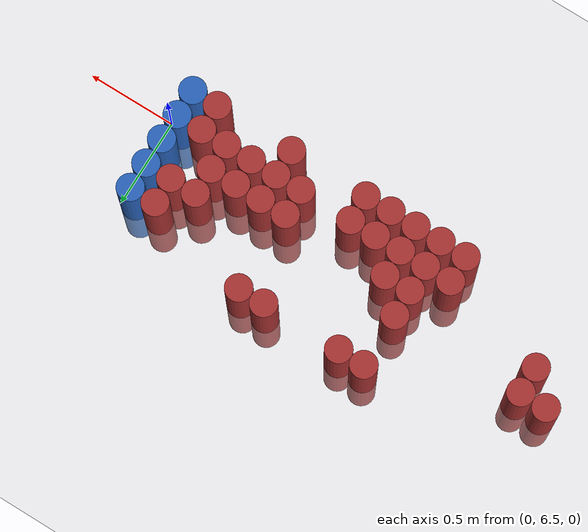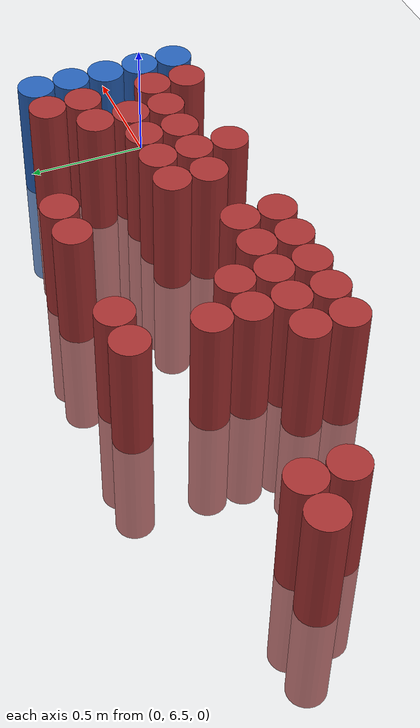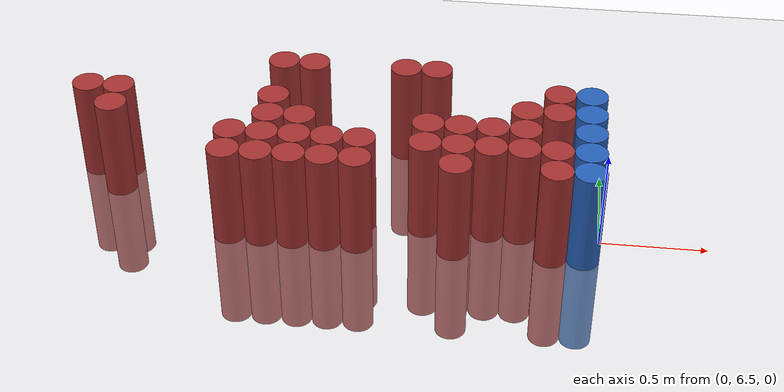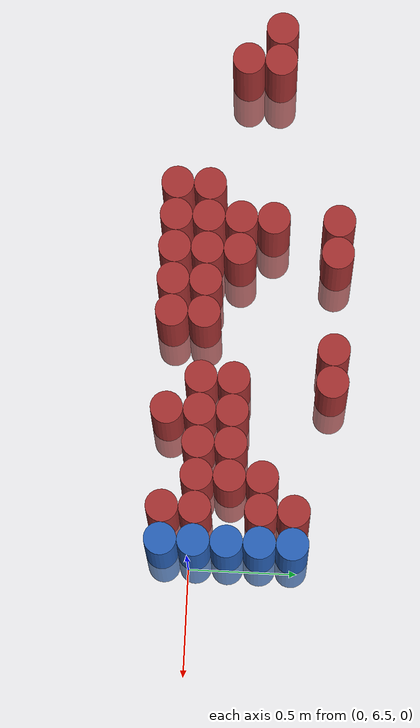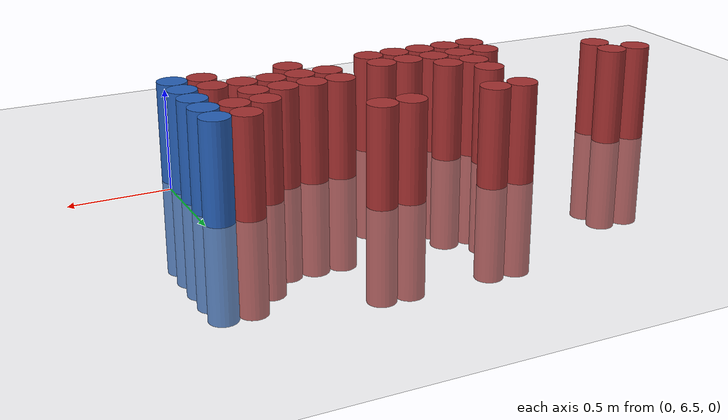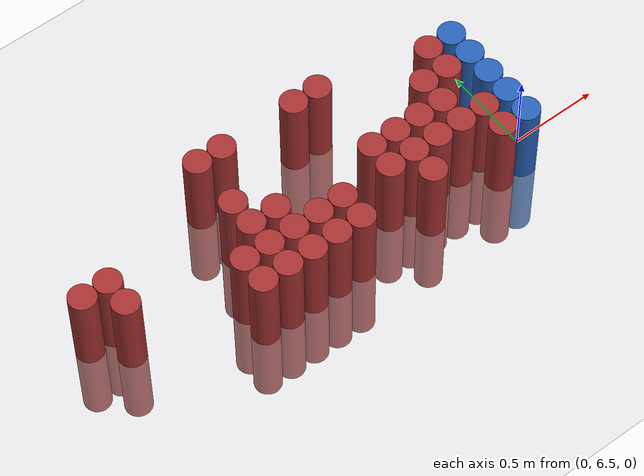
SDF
<sdf version="1.6">
 <world name="default">
  <model name="ground_plane">
   <static>1</static>
   <link name="link">
    <collision name="collision">
     <geometry><plane><normal>0 0 1</normal><size>100 100</size></plane></geometry>
     <surface><friction><ode><mu>100</mu><mu2>50</mu2></ode></friction></surface>
    </collision>
    <visual name="visual">
     <cast_shadows>0</cast_shadows>
     <geometry><plane><normal>0 0 1</normal><size>100 100</size></plane></geometry>
     <material>
      <script><uri>file://media/materials/scripts/gazebo.material</uri><name>Gazebo/Grey</name></script>
     </material>
    </visual>
   </link>
  </model>
  <model name="unit_cylinder_202">
   <static>1</static>
   <pose>-2.475000 6.825000 0.000000 0.000000 0.000000 0.000000</pose>
   <link name="link">
    <inertial>
     <mass>1</mass>
     <inertia><ixx>0.145833</ixx><ixy>0</ixy><ixz>0</ixz><iyy>0.145833</iyy><iyz>0</iyz><izz>0.125</izz></inertia>
    </inertial>
    <collision name="collision">
     <geometry><cylinder><radius>0.075000</radius><length>1</length></cylinder></geometry>
    </collision>
    <visual name="visual">
     <geometry><cylinder><radius>0.075000</radius><length>1</length></cylinder></geometry>
     <material>
      <ambient>0.648000 0.192000 0.192000 1</ambient>
      <diffuse>0.648000 0.192000 0.192000 1</diffuse>
     </material>
     <material>
      <script><name>Gazebo/Grey</name><uri>file://media/materials/scripts/gazebo.material</uri></script>
     </material>
    </visual>
    <sensor name="sensor_contact" type="contact"><contact><collision>collision</collision></contact></sensor>
   </link>
   <plugin filename="gz-sim-touchplugin-system" name="gz::sim::systems::TouchPlugin">
    <target>robot</target>
    <namespace>robot</namespace>
    <time>0.001</time>
    <enabled>true</enabled>
   </plugin>
  </model>
  <model name="unit_cylinder_210">
   <static>1</static>
   <pose>-2.325000 6.675000 0.000000 0.000000 0.000000 0.000000</pose>
   <link name="link">
    <inertial>
     <mass>1</mass>
     <inertia><ixx>0.145833</ixx><ixy>0</ixy><ixz>0</ixz><iyy>0.145833</iyy><iyz>0</iyz><izz>0.125</izz></inertia>
    </inertial>
    <collision name="collision">
     <geometry><cylinder><radius>0.075000</radius><length>1</length></cylinder></geometry>
    </collision>
    <visual name="visual">
     <geometry><cylinder><radius>0.075000</radius><length>1</length></cylinder></geometry>
     <material>
      <ambient>0.648000 0.192000 0.192000 1</ambient>
      <diffuse>0.648000 0.192000 0.192000 1</diffuse>
     </material>
     <material>
      <script><name>Gazebo/Grey</name><uri>file://media/materials/scripts/gazebo.material</uri></script>
     </material>
    </visual>
    <sensor name="sensor_contact" type="contact"><contact><collision>collision</collision></contact></sensor>
   </link>
   <plugin filename="gz-sim-touchplugin-system" name="gz::sim::systems::TouchPlugin">
    <target>robot</target>
    <namespace>robot</namespace>
    <time>0.001</time>
    <enabled>true</enabled>
   </plugin>
  </model>
  <model name="unit_cylinder_211">
   <static>1</static>
   <pose>-2.325000 6.825000 0.000000 0.000000 0.000000 0.000000</pose>
   <link name="link">
    <inertial>
     <mass>1</mass>
     <inertia><ixx>0.145833</ixx><ixy>0</ixy><ixz>0</ixz><iyy>0.145833</iyy><iyz>0</iyz><izz>0.125</izz></inertia>
    </inertial>
    <collision name="collision">
     <geometry><cylinder><radius>0.075000</radius><length>1</length></cylinder></geometry>
    </collision>
    <visual name="visual">
     <geometry><cylinder><radius>0.075000</radius><length>1</length></cylinder></geometry>
     <material>
      <ambient>0.648000 0.192000 0.192000 1</ambient>
      <diffuse>0.648000 0.192000 0.192000 1</diffuse>
     </material>
     <material>
      <script><name>Gazebo/Grey</name><uri>file://media/materials/scripts/gazebo.material</uri></script>
     </material>
    </visual>
    <sensor name="sensor_contact" type="contact"><contact><collision>collision</collision></contact></sensor>
   </link>
   <plugin filename="gz-sim-touchplugin-system" name="gz::sim::systems::TouchPlugin">
    <target>robot</target>
    <namespace>robot</namespace>
    <time>0.001</time>
    <enabled>true</enabled>
   </plugin>
  </model>
  <model name="unit_cylinder_238">
   <static>1</static>
   <pose>-1.725000 6.375000 0.000000 0.000000 0.000000 0.000000</pose>
   <link name="link">
    <inertial>
     <mass>1</mass>
     <inertia><ixx>0.145833</ixx><ixy>0</ixy><ixz>0</ixz><iyy>0.145833</iyy><iyz>0</iyz><izz>0.125</izz></inertia>
    </inertial>
    <collision name="collision">
     <geometry><cylinder><radius>0.075000</radius><length>1</length></cylinder></geometry>
    </collision>
    <visual name="visual">
     <geometry><cylinder><radius>0.075000</radius><length>1</length></cylinder></geometry>
     <material>
      <ambient>0.648000 0.192000 0.192000 1</ambient>
      <diffuse>0.648000 0.192000 0.192000 1</diffuse>
     </material>
     <material>
      <script><name>Gazebo/Grey</name><uri>file://media/materials/scripts/gazebo.material</uri></script>
     </material>
    </visual>
    <sensor name="sensor_contact" type="contact"><contact><collision>collision</collision></contact></sensor>
   </link>
   <plugin filename="gz-sim-touchplugin-system" name="gz::sim::systems::TouchPlugin">
    <target>robot</target>
    <namespace>robot</namespace>
    <time>0.001</time>
    <enabled>true</enabled>
   </plugin>
  </model>
  <model name="unit_cylinder_239">
   <static>1</static>
   <pose>-1.725000 6.525000 0.000000 0.000000 0.000000 0.000000</pose>
   <link name="link">
    <inertial>
     <mass>1</mass>
     <inertia><ixx>0.145833</ixx><ixy>0</ixy><ixz>0</ixz><iyy>0.145833</iyy><iyz>0</iyz><izz>0.125</izz></inertia>
    </inertial>
    <collision name="collision">
     <geometry><cylinder><radius>0.075000</radius><length>1</length></cylinder></geometry>
    </collision>
    <visual name="visual">
     <geometry><cylinder><radius>0.075000</radius><length>1</length></cylinder></geometry>
     <material>
      <ambient>0.648000 0.192000 0.192000 1</ambient>
      <diffuse>0.648000 0.192000 0.192000 1</diffuse>
     </material>
     <material>
      <script><name>Gazebo/Grey</name><uri>file://media/materials/scripts/gazebo.material</uri></script>
     </material>
    </visual>
    <sensor name="sensor_contact" type="contact"><contact><collision>collision</collision></contact></sensor>
   </link>
   <plugin filename="gz-sim-touchplugin-system" name="gz::sim::systems::TouchPlugin">
    <target>robot</target>
    <namespace>robot</namespace>
    <time>0.001</time>
    <enabled>true</enabled>
   </plugin>
  </model>
  <model name="unit_cylinder_247">
   <static>1</static>
   <pose>-1.575000 6.375000 0.000000 0.000000 0.000000 0.000000</pose>
   <link name="link">
    <inertial>
     <mass>1</mass>
     <inertia><ixx>0.145833</ixx><ixy>0</ixy><ixz>0</ixz><iyy>0.145833</iyy><iyz>0</iyz><izz>0.125</izz></inertia>
    </inertial>
    <collision name="collision">
     <geometry><cylinder><radius>0.075000</radius><length>1</length></cylinder></geometry>
    </collision>
    <visual name="visual">
     <geometry><cylinder><radius>0.075000</radius><length>1</length></cylinder></geometry>
     <material>
      <ambient>0.648000 0.192000 0.192000 1</ambient>
      <diffuse>0.648000 0.192000 0.192000 1</diffuse>
     </material>
     <material>
      <script><name>Gazebo/Grey</name><uri>file://media/materials/scripts/gazebo.material</uri></script>
     </material>
    </visual>
    <sensor name="sensor_contact" type="contact"><contact><collision>collision</collision></contact></sensor>
   </link>
   <plugin filename="gz-sim-touchplugin-system" name="gz::sim::systems::TouchPlugin">
    <target>robot</target>
    <namespace>robot</namespace>
    <time>0.001</time>
    <enabled>true</enabled>
   </plugin>
  </model>
  <model name="unit_cylinder_248">
   <static>1</static>
   <pose>-1.575000 6.525000 0.000000 0.000000 0.000000 0.000000</pose>
   <link name="link">
    <inertial>
     <mass>1</mass>
     <inertia><ixx>0.145833</ixx><ixy>0</ixy><ixz>0</ixz><iyy>0.145833</iyy><iyz>0</iyz><izz>0.125</izz></inertia>
    </inertial>
    <collision name="collision">
     <geometry><cylinder><radius>0.075000</radius><length>1</length></cylinder></geometry>
    </collision>
    <visual name="visual">
     <geometry><cylinder><radius>0.075000</radius><length>1</length></cylinder></geometry>
     <material>
      <ambient>0.648000 0.192000 0.192000 1</ambient>
      <diffuse>0.648000 0.192000 0.192000 1</diffuse>
     </material>
     <material>
      <script><name>Gazebo/Grey</name><uri>file://media/materials/scripts/gazebo.material</uri></script>
     </material>
    </visual>
    <sensor name="sensor_contact" type="contact"><contact><collision>collision</collision></contact></sensor>
   </link>
   <plugin filename="gz-sim-touchplugin-system" name="gz::sim::systems::TouchPlugin">
    <target>robot</target>
    <namespace>robot</namespace>
    <time>0.001</time>
    <enabled>true</enabled>
   </plugin>
  </model>
  <model name="unit_cylinder_249">
   <static>1</static>
   <pose>-1.575000 6.675000 0.000000 0.000000 0.000000 0.000000</pose>
   <link name="link">
    <inertial>
     <mass>1</mass>
     <inertia><ixx>0.145833</ixx><ixy>0</ixy><ixz>0</ixz><iyy>0.145833</iyy><iyz>0</iyz><izz>0.125</izz></inertia>
    </inertial>
    <collision name="collision">
     <geometry><cylinder><radius>0.075000</radius><length>1</length></cylinder></geometry>
    </collision>
    <visual name="visual">
     <geometry><cylinder><radius>0.075000</radius><length>1</length></cylinder></geometry>
     <material>
      <ambient>0.648000 0.192000 0.192000 1</ambient>
      <diffuse>0.648000 0.192000 0.192000 1</diffuse>
     </material>
     <material>
      <script><name>Gazebo/Grey</name><uri>file://media/materials/scripts/gazebo.material</uri></script>
     </material>
    </visual>
    <sensor name="sensor_contact" type="contact"><contact><collision>collision</collision></contact></sensor>
   </link>
   <plugin filename="gz-sim-touchplugin-system" name="gz::sim::systems::TouchPlugin">
    <target>robot</target>
    <namespace>robot</namespace>
    <time>0.001</time>
    <enabled>true</enabled>
   </plugin>
  </model>
  <model name="unit_cylinder_250">
   <static>1</static>
   <pose>-1.575000 6.825000 0.000000 0.000000 0.000000 0.000000</pose>
   <link name="link">
    <inertial>
     <mass>1</mass>
     <inertia><ixx>0.145833</ixx><ixy>0</ixy><ixz>0</ixz><iyy>0.145833</iyy><iyz>0</iyz><izz>0.125</izz></inertia>
    </inertial>
    <collision name="collision">
     <geometry><cylinder><radius>0.075000</radius><length>1</length></cylinder></geometry>
    </collision>
    <visual name="visual">
     <geometry><cylinder><radius>0.075000</radius><length>1</length></cylinder></geometry>
     <material>
      <ambient>0.648000 0.192000 0.192000 1</ambient>
      <diffuse>0.648000 0.192000 0.192000 1</diffuse>
     </material>
     <material>
      <script><name>Gazebo/Grey</name><uri>file://media/materials/scripts/gazebo.material</uri></script>
     </material>
    </visual>
    <sensor name="sensor_contact" type="contact"><contact><collision>collision</collision></contact></sensor>
   </link>
   <plugin filename="gz-sim-touchplugin-system" name="gz::sim::systems::TouchPlugin">
    <target>robot</target>
    <namespace>robot</namespace>
    <time>0.001</time>
    <enabled>true</enabled>
   </plugin>
  </model>
  <model name="unit_cylinder_251">
   <static>1</static>
   <pose>-1.575000 7.125000 0.000000 0.000000 0.000000 0.000000</pose>
   <link name="link">
    <inertial>
     <mass>1</mass>
     <inertia><ixx>0.145833</ixx><ixy>0</ixy><ixz>0</ixz><iyy>0.145833</iyy><iyz>0</iyz><izz>0.125</izz></inertia>
    </inertial>
    <collision name="collision">
     <geometry><cylinder><radius>0.075000</radius><length>1</length></cylinder></geometry>
    </collision>
    <visual name="visual">
     <geometry><cylinder><radius>0.075000</radius><length>1</length></cylinder></geometry>
     <material>
      <ambient>0.648000 0.192000 0.192000 1</ambient>
      <diffuse>0.648000 0.192000 0.192000 1</diffuse>
     </material>
     <material>
      <script><name>Gazebo/Grey</name><uri>file://media/materials/scripts/gazebo.material</uri></script>
     </material>
    </visual>
    <sensor name="sensor_contact" type="contact"><contact><collision>collision</collision></contact></sensor>
   </link>
   <plugin filename="gz-sim-touchplugin-system" name="gz::sim::systems::TouchPlugin">
    <target>robot</target>
    <namespace>robot</namespace>
    <time>0.001</time>
    <enabled>true</enabled>
   </plugin>
  </model>
  <model name="unit_cylinder_259">
   <static>1</static>
   <pose>-1.425000 6.375000 0.000000 0.000000 0.000000 0.000000</pose>
   <link name="link">
    <inertial>
     <mass>1</mass>
     <inertia><ixx>0.145833</ixx><ixy>0</ixy><ixz>0</ixz><iyy>0.145833</iyy><iyz>0</iyz><izz>0.125</izz></inertia>
    </inertial>
    <collision name="collision">
     <geometry><cylinder><radius>0.075000</radius><length>1</length></cylinder></geometry>
    </collision>
    <visual name="visual">
     <geometry><cylinder><radius>0.075000</radius><length>1</length></cylinder></geometry>
     <material>
      <ambient>0.648000 0.192000 0.192000 1</ambient>
      <diffuse>0.648000 0.192000 0.192000 1</diffuse>
     </material>
     <material>
      <script><name>Gazebo/Grey</name><uri>file://media/materials/scripts/gazebo.material</uri></script>
     </material>
    </visual>
    <sensor name="sensor_contact" type="contact"><contact><collision>collision</collision></contact></sensor>
   </link>
   <plugin filename="gz-sim-touchplugin-system" name="gz::sim::systems::TouchPlugin">
    <target>robot</target>
    <namespace>robot</namespace>
    <time>0.001</time>
    <enabled>true</enabled>
   </plugin>
  </model>
  <model name="unit_cylinder_260">
   <static>1</static>
   <pose>-1.425000 6.525000 0.000000 0.000000 0.000000 0.000000</pose>
   <link name="link">
    <inertial>
     <mass>1</mass>
     <inertia><ixx>0.145833</ixx><ixy>0</ixy><ixz>0</ixz><iyy>0.145833</iyy><iyz>0</iyz><izz>0.125</izz></inertia>
    </inertial>
    <collision name="collision">
     <geometry><cylinder><radius>0.075000</radius><length>1</length></cylinder></geometry>
    </collision>
    <visual name="visual">
     <geometry><cylinder><radius>0.075000</radius><length>1</length></cylinder></geometry>
     <material>
      <ambient>0.648000 0.192000 0.192000 1</ambient>
      <diffuse>0.648000 0.192000 0.192000 1</diffuse>
     </material>
     <material>
      <script><name>Gazebo/Grey</name><uri>file://media/materials/scripts/gazebo.material</uri></script>
     </material>
    </visual>
    <sensor name="sensor_contact" type="contact"><contact><collision>collision</collision></contact></sensor>
   </link>
   <plugin filename="gz-sim-touchplugin-system" name="gz::sim::systems::TouchPlugin">
    <target>robot</target>
    <namespace>robot</namespace>
    <time>0.001</time>
    <enabled>true</enabled>
   </plugin>
  </model>
  <model name="unit_cylinder_261">
   <static>1</static>
   <pose>-1.425000 6.675000 0.000000 0.000000 0.000000 0.000000</pose>
   <link name="link">
    <inertial>
     <mass>1</mass>
     <inertia><ixx>0.145833</ixx><ixy>0</ixy><ixz>0</ixz><iyy>0.145833</iyy><iyz>0</iyz><izz>0.125</izz></inertia>
    </inertial>
    <collision name="collision">
     <geometry><cylinder><radius>0.075000</radius><length>1</length></cylinder></geometry>
    </collision>
    <visual name="visual">
     <geometry><cylinder><radius>0.075000</radius><length>1</length></cylinder></geometry>
     <material>
      <ambient>0.648000 0.192000 0.192000 1</ambient>
      <diffuse>0.648000 0.192000 0.192000 1</diffuse>
     </material>
     <material>
      <script><name>Gazebo/Grey</name><uri>file://media/materials/scripts/gazebo.material</uri></script>
     </material>
    </visual>
    <sensor name="sensor_contact" type="contact"><contact><collision>collision</collision></contact></sensor>
   </link>
   <plugin filename="gz-sim-touchplugin-system" name="gz::sim::systems::TouchPlugin">
    <target>robot</target>
    <namespace>robot</namespace>
    <time>0.001</time>
    <enabled>true</enabled>
   </plugin>
  </model>
  <model name="unit_cylinder_262">
   <static>1</static>
   <pose>-1.425000 7.125000 0.000000 0.000000 0.000000 0.000000</pose>
   <link name="link">
    <inertial>
     <mass>1</mass>
     <inertia><ixx>0.145833</ixx><ixy>0</ixy><ixz>0</ixz><iyy>0.145833</iyy><iyz>0</iyz><izz>0.125</izz></inertia>
    </inertial>
    <collision name="collision">
     <geometry><cylinder><radius>0.075000</radius><length>1</length></cylinder></geometry>
    </collision>
    <visual name="visual">
     <geometry><cylinder><radius>0.075000</radius><length>1</length></cylinder></geometry>
     <material>
      <ambient>0.648000 0.192000 0.192000 1</ambient>
      <diffuse>0.648000 0.192000 0.192000 1</diffuse>
     </material>
     <material>
      <script><name>Gazebo/Grey</name><uri>file://media/materials/scripts/gazebo.material</uri></script>
     </material>
    </visual>
    <sensor name="sensor_contact" type="contact"><contact><collision>collision</collision></contact></sensor>
   </link>
   <plugin filename="gz-sim-touchplugin-system" name="gz::sim::systems::TouchPlugin">
    <target>robot</target>
    <namespace>robot</namespace>
    <time>0.001</time>
    <enabled>true</enabled>
   </plugin>
  </model>
  <model name="unit_cylinder_265">
   <static>1</static>
   <pose>-1.275000 6.375000 0.000000 0.000000 0.000000 0.000000</pose>
   <link name="link">
    <inertial>
     <mass>1</mass>
     <inertia><ixx>0.145833</ixx><ixy>0</ixy><ixz>0</ixz><iyy>0.145833</iyy><iyz>0</iyz><izz>0.125</izz></inertia>
    </inertial>
    <collision name="collision">
     <geometry><cylinder><radius>0.075000</radius><length>1</length></cylinder></geometry>
    </collision>
    <visual name="visual">
     <geometry><cylinder><radius>0.075000</radius><length>1</length></cylinder></geometry>
     <material>
      <ambient>0.648000 0.192000 0.192000 1</ambient>
      <diffuse>0.648000 0.192000 0.192000 1</diffuse>
     </material>
     <material>
      <script><name>Gazebo/Grey</name><uri>file://media/materials/scripts/gazebo.material</uri></script>
     </material>
    </visual>
    <sensor name="sensor_contact" type="contact"><contact><collision>collision</collision></contact></sensor>
   </link>
   <plugin filename="gz-sim-touchplugin-system" name="gz::sim::systems::TouchPlugin">
    <target>robot</target>
    <namespace>robot</namespace>
    <time>0.001</time>
    <enabled>true</enabled>
   </plugin>
  </model>
  <model name="unit_cylinder_266">
   <static>1</static>
   <pose>-1.275000 6.525000 0.000000 0.000000 0.000000 0.000000</pose>
   <link name="link">
    <inertial>
     <mass>1</mass>
     <inertia><ixx>0.145833</ixx><ixy>0</ixy><ixz>0</ixz><iyy>0.145833</iyy><iyz>0</iyz><izz>0.125</izz></inertia>
    </inertial>
    <collision name="collision">
     <geometry><cylinder><radius>0.075000</radius><length>1</length></cylinder></geometry>
    </collision>
    <visual name="visual">
     <geometry><cylinder><radius>0.075000</radius><length>1</length></cylinder></geometry>
     <material>
      <ambient>0.648000 0.192000 0.192000 1</ambient>
      <diffuse>0.648000 0.192000 0.192000 1</diffuse>
     </material>
     <material>
      <script><name>Gazebo/Grey</name><uri>file://media/materials/scripts/gazebo.material</uri></script>
     </material>
    </visual>
    <sensor name="sensor_contact" type="contact"><contact><collision>collision</collision></contact></sensor>
   </link>
   <plugin filename="gz-sim-touchplugin-system" name="gz::sim::systems::TouchPlugin">
    <target>robot</target>
    <namespace>robot</namespace>
    <time>0.001</time>
    <enabled>true</enabled>
   </plugin>
  </model>
  <model name="unit_cylinder_268">
   <static>1</static>
   <pose>-1.125000 6.375000 0.000000 0.000000 0.000000 0.000000</pose>
   <link name="link">
    <inertial>
     <mass>1</mass>
     <inertia><ixx>0.145833</ixx><ixy>0</ixy><ixz>0</ixz><iyy>0.145833</iyy><iyz>0</iyz><izz>0.125</izz></inertia>
    </inertial>
    <collision name="collision">
     <geometry><cylinder><radius>0.075000</radius><length>1</length></cylinder></geometry>
    </collision>
    <visual name="visual">
     <geometry><cylinder><radius>0.075000</radius><length>1</length></cylinder></geometry>
     <material>
      <ambient>0.648000 0.192000 0.192000 1</ambient>
      <diffuse>0.648000 0.192000 0.192000 1</diffuse>
     </material>
     <material>
      <script><name>Gazebo/Grey</name><uri>file://media/materials/scripts/gazebo.material</uri></script>
     </material>
    </visual>
    <sensor name="sensor_contact" type="contact"><contact><collision>collision</collision></contact></sensor>
   </link>
   <plugin filename="gz-sim-touchplugin-system" name="gz::sim::systems::TouchPlugin">
    <target>robot</target>
    <namespace>robot</namespace>
    <time>0.001</time>
    <enabled>true</enabled>
   </plugin>
  </model>
  <model name="unit_cylinder_269">
   <static>1</static>
   <pose>-1.125000 6.525000 0.000000 0.000000 0.000000 0.000000</pose>
   <link name="link">
    <inertial>
     <mass>1</mass>
     <inertia><ixx>0.145833</ixx><ixy>0</ixy><ixz>0</ixz><iyy>0.145833</iyy><iyz>0</iyz><izz>0.125</izz></inertia>
    </inertial>
    <collision name="collision">
     <geometry><cylinder><radius>0.075000</radius><length>1</length></cylinder></geometry>
    </collision>
    <visual name="visual">
     <geometry><cylinder><radius>0.075000</radius><length>1</length></cylinder></geometry>
     <material>
      <ambient>0.648000 0.192000 0.192000 1</ambient>
      <diffuse>0.648000 0.192000 0.192000 1</diffuse>
     </material>
     <material>
      <script><name>Gazebo/Grey</name><uri>file://media/materials/scripts/gazebo.material</uri></script>
     </material>
    </visual>
    <sensor name="sensor_contact" type="contact"><contact><collision>collision</collision></contact></sensor>
   </link>
   <plugin filename="gz-sim-touchplugin-system" name="gz::sim::systems::TouchPlugin">
    <target>robot</target>
    <namespace>robot</namespace>
    <time>0.001</time>
    <enabled>true</enabled>
   </plugin>
  </model>
  <model name="unit_cylinder_272">
   <static>1</static>
   <pose>-0.975000 7.125000 0.000000 0.000000 0.000000 0.000000</pose>
   <link name="link">
    <inertial>
     <mass>1</mass>
     <inertia><ixx>0.145833</ixx><ixy>0</ixy><ixz>0</ixz><iyy>0.145833</iyy><iyz>0</iyz><izz>0.125</izz></inertia>
    </inertial>
    <collision name="collision">
     <geometry><cylinder><radius>0.075000</radius><length>1</length></cylinder></geometry>
    </collision>
    <visual name="visual">
     <geometry><cylinder><radius>0.075000</radius><length>1</length></cylinder></geometry>
     <material>
      <ambient>0.648000 0.192000 0.192000 1</ambient>
      <diffuse>0.648000 0.192000 0.192000 1</diffuse>
     </material>
     <material>
      <script><name>Gazebo/Grey</name><uri>file://media/materials/scripts/gazebo.material</uri></script>
     </material>
    </visual>
    <sensor name="sensor_contact" type="contact"><contact><collision>collision</collision></contact></sensor>
   </link>
   <plugin filename="gz-sim-touchplugin-system" name="gz::sim::systems::TouchPlugin">
    <target>robot</target>
    <namespace>robot</namespace>
    <time>0.001</time>
    <enabled>true</enabled>
   </plugin>
  </model>
  <model name="unit_cylinder_276">
   <static>1</static>
   <pose>-0.825000 6.525000 0.000000 0.000000 0.000000 0.000000</pose>
   <link name="link">
    <inertial>
     <mass>1</mass>
     <inertia><ixx>0.145833</ixx><ixy>0</ixy><ixz>0</ixz><iyy>0.145833</iyy><iyz>0</iyz><izz>0.125</izz></inertia>
    </inertial>
    <collision name="collision">
     <geometry><cylinder><radius>0.075000</radius><length>1</length></cylinder></geometry>
    </collision>
    <visual name="visual">
     <geometry><cylinder><radius>0.075000</radius><length>1</length></cylinder></geometry>
     <material>
      <ambient>0.648000 0.192000 0.192000 1</ambient>
      <diffuse>0.648000 0.192000 0.192000 1</diffuse>
     </material>
     <material>
      <script><name>Gazebo/Grey</name><uri>file://media/materials/scripts/gazebo.material</uri></script>
     </material>
    </visual>
    <sensor name="sensor_contact" type="contact"><contact><collision>collision</collision></contact></sensor>
   </link>
   <plugin filename="gz-sim-touchplugin-system" name="gz::sim::systems::TouchPlugin">
    <target>robot</target>
    <namespace>robot</namespace>
    <time>0.001</time>
    <enabled>true</enabled>
   </plugin>
  </model>
  <model name="unit_cylinder_277">
   <static>1</static>
   <pose>-0.825000 6.675000 0.000000 0.000000 0.000000 0.000000</pose>
   <link name="link">
    <inertial>
     <mass>1</mass>
     <inertia><ixx>0.145833</ixx><ixy>0</ixy><ixz>0</ixz><iyy>0.145833</iyy><iyz>0</iyz><izz>0.125</izz></inertia>
    </inertial>
    <collision name="collision">
     <geometry><cylinder><radius>0.075000</radius><length>1</length></cylinder></geometry>
    </collision>
    <visual name="visual">
     <geometry><cylinder><radius>0.075000</radius><length>1</length></cylinder></geometry>
     <material>
      <ambient>0.648000 0.192000 0.192000 1</ambient>
      <diffuse>0.648000 0.192000 0.192000 1</diffuse>
     </material>
     <material>
      <script><name>Gazebo/Grey</name><uri>file://media/materials/scripts/gazebo.material</uri></script>
     </material>
    </visual>
    <sensor name="sensor_contact" type="contact"><contact><collision>collision</collision></contact></sensor>
   </link>
   <plugin filename="gz-sim-touchplugin-system" name="gz::sim::systems::TouchPlugin">
    <target>robot</target>
    <namespace>robot</namespace>
    <time>0.001</time>
    <enabled>true</enabled>
   </plugin>
  </model>
  <model name="unit_cylinder_278">
   <static>1</static>
   <pose>-0.825000 7.125000 0.000000 0.000000 0.000000 0.000000</pose>
   <link name="link">
    <inertial>
     <mass>1</mass>
     <inertia><ixx>0.145833</ixx><ixy>0</ixy><ixz>0</ixz><iyy>0.145833</iyy><iyz>0</iyz><izz>0.125</izz></inertia>
    </inertial>
    <collision name="collision">
     <geometry><cylinder><radius>0.075000</radius><length>1</length></cylinder></geometry>
    </collision>
    <visual name="visual">
     <geometry><cylinder><radius>0.075000</radius><length>1</length></cylinder></geometry>
     <material>
      <ambient>0.648000 0.192000 0.192000 1</ambient>
      <diffuse>0.648000 0.192000 0.192000 1</diffuse>
     </material>
     <material>
      <script><name>Gazebo/Grey</name><uri>file://media/materials/scripts/gazebo.material</uri></script>
     </material>
    </visual>
    <sensor name="sensor_contact" type="contact"><contact><collision>collision</collision></contact></sensor>
   </link>
   <plugin filename="gz-sim-touchplugin-system" name="gz::sim::systems::TouchPlugin">
    <target>robot</target>
    <namespace>robot</namespace>
    <time>0.001</time>
    <enabled>true</enabled>
   </plugin>
  </model>
  <model name="unit_cylinder_282">
   <static>1</static>
   <pose>-0.675000 6.375000 0.000000 0.000000 0.000000 0.000000</pose>
   <link name="link">
    <inertial>
     <mass>1</mass>
     <inertia><ixx>0.145833</ixx><ixy>0</ixy><ixz>0</ixz><iyy>0.145833</iyy><iyz>0</iyz><izz>0.125</izz></inertia>
    </inertial>
    <collision name="collision">
     <geometry><cylinder><radius>0.075000</radius><length>1</length></cylinder></geometry>
    </collision>
    <visual name="visual">
     <geometry><cylinder><radius>0.075000</radius><length>1</length></cylinder></geometry>
     <material>
      <ambient>0.648000 0.192000 0.192000 1</ambient>
      <diffuse>0.648000 0.192000 0.192000 1</diffuse>
     </material>
     <material>
      <script><name>Gazebo/Grey</name><uri>file://media/materials/scripts/gazebo.material</uri></script>
     </material>
    </visual>
    <sensor name="sensor_contact" type="contact"><contact><collision>collision</collision></contact></sensor>
   </link>
   <plugin filename="gz-sim-touchplugin-system" name="gz::sim::systems::TouchPlugin">
    <target>robot</target>
    <namespace>robot</namespace>
    <time>0.001</time>
    <enabled>true</enabled>
   </plugin>
  </model>
  <model name="unit_cylinder_283">
   <static>1</static>
   <pose>-0.675000 6.525000 0.000000 0.000000 0.000000 0.000000</pose>
   <link name="link">
    <inertial>
     <mass>1</mass>
     <inertia><ixx>0.145833</ixx><ixy>0</ixy><ixz>0</ixz><iyy>0.145833</iyy><iyz>0</iyz><izz>0.125</izz></inertia>
    </inertial>
    <collision name="collision">
     <geometry><cylinder><radius>0.075000</radius><length>1</length></cylinder></geometry>
    </collision>
    <visual name="visual">
     <geometry><cylinder><radius>0.075000</radius><length>1</length></cylinder></geometry>
     <material>
      <ambient>0.648000 0.192000 0.192000 1</ambient>
      <diffuse>0.648000 0.192000 0.192000 1</diffuse>
     </material>
     <material>
      <script><name>Gazebo/Grey</name><uri>file://media/materials/scripts/gazebo.material</uri></script>
     </material>
    </visual>
    <sensor name="sensor_contact" type="contact"><contact><collision>collision</collision></contact></sensor>
   </link>
   <plugin filename="gz-sim-touchplugin-system" name="gz::sim::systems::TouchPlugin">
    <target>robot</target>
    <namespace>robot</namespace>
    <time>0.001</time>
    <enabled>true</enabled>
   </plugin>
  </model>
  <model name="unit_cylinder_284">
   <static>1</static>
   <pose>-0.675000 6.675000 0.000000 0.000000 0.000000 0.000000</pose>
   <link name="link">
    <inertial>
     <mass>1</mass>
     <inertia><ixx>0.145833</ixx><ixy>0</ixy><ixz>0</ixz><iyy>0.145833</iyy><iyz>0</iyz><izz>0.125</izz></inertia>
    </inertial>
    <collision name="collision">
     <geometry><cylinder><radius>0.075000</radius><length>1</length></cylinder></geometry>
    </collision>
    <visual name="visual">
     <geometry><cylinder><radius>0.075000</radius><length>1</length></cylinder></geometry>
     <material>
      <ambient>0.648000 0.192000 0.192000 1</ambient>
      <diffuse>0.648000 0.192000 0.192000 1</diffuse>
     </material>
     <material>
      <script><name>Gazebo/Grey</name><uri>file://media/materials/scripts/gazebo.material</uri></script>
     </material>
    </visual>
    <sensor name="sensor_contact" type="contact"><contact><collision>collision</collision></contact></sensor>
   </link>
   <plugin filename="gz-sim-touchplugin-system" name="gz::sim::systems::TouchPlugin">
    <target>robot</target>
    <namespace>robot</namespace>
    <time>0.001</time>
    <enabled>true</enabled>
   </plugin>
  </model>
  <model name="unit_cylinder_288">
   <static>1</static>
   <pose>-0.525000 6.525000 0.000000 0.000000 0.000000 0.000000</pose>
   <link name="link">
    <inertial>
     <mass>1</mass>
     <inertia><ixx>0.145833</ixx><ixy>0</ixy><ixz>0</ixz><iyy>0.145833</iyy><iyz>0</iyz><izz>0.125</izz></inertia>
    </inertial>
    <collision name="collision">
     <geometry><cylinder><radius>0.075000</radius><length>1</length></cylinder></geometry>
    </collision>
    <visual name="visual">
     <geometry><cylinder><radius>0.075000</radius><length>1</length></cylinder></geometry>
     <material>
      <ambient>0.648000 0.192000 0.192000 1</ambient>
      <diffuse>0.648000 0.192000 0.192000 1</diffuse>
     </material>
     <material>
      <script><name>Gazebo/Grey</name><uri>file://media/materials/scripts/gazebo.material</uri></script>
     </material>
    </visual>
    <sensor name="sensor_contact" type="contact"><contact><collision>collision</collision></contact></sensor>
   </link>
   <plugin filename="gz-sim-touchplugin-system" name="gz::sim::systems::TouchPlugin">
    <target>robot</target>
    <namespace>robot</namespace>
    <time>0.001</time>
    <enabled>true</enabled>
   </plugin>
  </model>
  <model name="unit_cylinder_289">
   <static>1</static>
   <pose>-0.525000 6.675000 0.000000 0.000000 0.000000 0.000000</pose>
   <link name="link">
    <inertial>
     <mass>1</mass>
     <inertia><ixx>0.145833</ixx><ixy>0</ixy><ixz>0</ixz><iyy>0.145833</iyy><iyz>0</iyz><izz>0.125</izz></inertia>
    </inertial>
    <collision name="collision">
     <geometry><cylinder><radius>0.075000</radius><length>1</length></cylinder></geometry>
    </collision>
    <visual name="visual">
     <geometry><cylinder><radius>0.075000</radius><length>1</length></cylinder></geometry>
     <material>
      <ambient>0.648000 0.192000 0.192000 1</ambient>
      <diffuse>0.648000 0.192000 0.192000 1</diffuse>
     </material>
     <material>
      <script><name>Gazebo/Grey</name><uri>file://media/materials/scripts/gazebo.material</uri></script>
     </material>
    </visual>
    <sensor name="sensor_contact" type="contact"><contact><collision>collision</collision></contact></sensor>
   </link>
   <plugin filename="gz-sim-touchplugin-system" name="gz::sim::systems::TouchPlugin">
    <target>robot</target>
    <namespace>robot</namespace>
    <time>0.001</time>
    <enabled>true</enabled>
   </plugin>
  </model>
  <model name="unit_cylinder_295">
   <static>1</static>
   <pose>-0.375000 6.525000 0.000000 0.000000 0.000000 0.000000</pose>
   <link name="link">
    <inertial>
     <mass>1</mass>
     <inertia><ixx>0.145833</ixx><ixy>0</ixy><ixz>0</ixz><iyy>0.145833</iyy><iyz>0</iyz><izz>0.125</izz></inertia>
    </inertial>
    <collision name="collision">
     <geometry><cylinder><radius>0.075000</radius><length>1</length></cylinder></geometry>
    </collision>
    <visual name="visual">
     <geometry><cylinder><radius>0.075000</radius><length>1</length></cylinder></geometry>
     <material>
      <ambient>0.648000 0.192000 0.192000 1</ambient>
      <diffuse>0.648000 0.192000 0.192000 1</diffuse>
     </material>
     <material>
      <script><name>Gazebo/Grey</name><uri>file://media/materials/scripts/gazebo.material</uri></script>
     </material>
    </visual>
    <sensor name="sensor_contact" type="contact"><contact><collision>collision</collision></contact></sensor>
   </link>
   <plugin filename="gz-sim-touchplugin-system" name="gz::sim::systems::TouchPlugin">
    <target>robot</target>
    <namespace>robot</namespace>
    <time>0.001</time>
    <enabled>true</enabled>
   </plugin>
  </model>
  <model name="unit_cylinder_296">
   <static>1</static>
   <pose>-0.375000 6.675000 0.000000 0.000000 0.000000 0.000000</pose>
   <link name="link">
    <inertial>
     <mass>1</mass>
     <inertia><ixx>0.145833</ixx><ixy>0</ixy><ixz>0</ixz><iyy>0.145833</iyy><iyz>0</iyz><izz>0.125</izz></inertia>
    </inertial>
    <collision name="collision">
     <geometry><cylinder><radius>0.075000</radius><length>1</length></cylinder></geometry>
    </collision>
    <visual name="visual">
     <geometry><cylinder><radius>0.075000</radius><length>1</length></cylinder></geometry>
     <material>
      <ambient>0.648000 0.192000 0.192000 1</ambient>
      <diffuse>0.648000 0.192000 0.192000 1</diffuse>
     </material>
     <material>
      <script><name>Gazebo/Grey</name><uri>file://media/materials/scripts/gazebo.material</uri></script>
     </material>
    </visual>
    <sensor name="sensor_contact" type="contact"><contact><collision>collision</collision></contact></sensor>
   </link>
   <plugin filename="gz-sim-touchplugin-system" name="gz::sim::systems::TouchPlugin">
    <target>robot</target>
    <namespace>robot</namespace>
    <time>0.001</time>
    <enabled>true</enabled>
   </plugin>
  </model>
  <model name="unit_cylinder_297">
   <static>1</static>
   <pose>-0.375000 6.825000 0.000000 0.000000 0.000000 0.000000</pose>
   <link name="link">
    <inertial>
     <mass>1</mass>
     <inertia><ixx>0.145833</ixx><ixy>0</ixy><ixz>0</ixz><iyy>0.145833</iyy><iyz>0</iyz><izz>0.125</izz></inertia>
    </inertial>
    <collision name="collision">
     <geometry><cylinder><radius>0.075000</radius><length>1</length></cylinder></geometry>
    </collision>
    <visual name="visual">
     <geometry><cylinder><radius>0.075000</radius><length>1</length></cylinder></geometry>
     <material>
      <ambient>0.648000 0.192000 0.192000 1</ambient>
      <diffuse>0.648000 0.192000 0.192000 1</diffuse>
     </material>
     <material>
      <script><name>Gazebo/Grey</name><uri>file://media/materials/scripts/gazebo.material</uri></script>
     </material>
    </visual>
    <sensor name="sensor_contact" type="contact"><contact><collision>collision</collision></contact></sensor>
   </link>
   <plugin filename="gz-sim-touchplugin-system" name="gz::sim::systems::TouchPlugin">
    <target>robot</target>
    <namespace>robot</namespace>
    <time>0.001</time>
    <enabled>true</enabled>
   </plugin>
  </model>
  <model name="unit_cylinder_307">
   <static>1</static>
   <pose>-0.225000 6.375000 0.000000 0.000000 0.000000 0.000000</pose>
   <link name="link">
    <inertial>
     <mass>1</mass>
     <inertia><ixx>0.145833</ixx><ixy>0</ixy><ixz>0</ixz><iyy>0.145833</iyy><iyz>0</iyz><izz>0.125</izz></inertia>
    </inertial>
    <collision name="collision">
     <geometry><cylinder><radius>0.075000</radius><length>1</length></cylinder></geometry>
    </collision>
    <visual name="visual">
     <geometry><cylinder><radius>0.075000</radius><length>1</length></cylinder></geometry>
     <material>
      <ambient>0.648000 0.192000 0.192000 1</ambient>
      <diffuse>0.648000 0.192000 0.192000 1</diffuse>
     </material>
     <material>
      <script><name>Gazebo/Grey</name><uri>file://media/materials/scripts/gazebo.material</uri></script>
     </material>
    </visual>
    <sensor name="sensor_contact" type="contact"><contact><collision>collision</collision></contact></sensor>
   </link>
   <plugin filename="gz-sim-touchplugin-system" name="gz::sim::systems::TouchPlugin">
    <target>robot</target>
    <namespace>robot</namespace>
    <time>0.001</time>
    <enabled>true</enabled>
   </plugin>
  </model>
  <model name="unit_cylinder_308">
   <static>1</static>
   <pose>-0.225000 6.525000 0.000000 0.000000 0.000000 0.000000</pose>
   <link name="link">
    <inertial>
     <mass>1</mass>
     <inertia><ixx>0.145833</ixx><ixy>0</ixy><ixz>0</ixz><iyy>0.145833</iyy><iyz>0</iyz><izz>0.125</izz></inertia>
    </inertial>
    <collision name="collision">
     <geometry><cylinder><radius>0.075000</radius><length>1</length></cylinder></geometry>
    </collision>
    <visual name="visual">
     <geometry><cylinder><radius>0.075000</radius><length>1</length></cylinder></geometry>
     <material>
      <ambient>0.648000 0.192000 0.192000 1</ambient>
      <diffuse>0.648000 0.192000 0.192000 1</diffuse>
     </material>
     <material>
      <script><name>Gazebo/Grey</name><uri>file://media/materials/scripts/gazebo.material</uri></script>
     </material>
    </visual>
    <sensor name="sensor_contact" type="contact"><contact><collision>collision</collision></contact></sensor>
   </link>
   <plugin filename="gz-sim-touchplugin-system" name="gz::sim::systems::TouchPlugin">
    <target>robot</target>
    <namespace>robot</namespace>
    <time>0.001</time>
    <enabled>true</enabled>
   </plugin>
  </model>
  <model name="unit_cylinder_309">
   <static>1</static>
   <pose>-0.225000 6.825000 0.000000 0.000000 0.000000 0.000000</pose>
   <link name="link">
    <inertial>
     <mass>1</mass>
     <inertia><ixx>0.145833</ixx><ixy>0</ixy><ixz>0</ixz><iyy>0.145833</iyy><iyz>0</iyz><izz>0.125</izz></inertia>
    </inertial>
    <collision name="collision">
     <geometry><cylinder><radius>0.075000</radius><length>1</length></cylinder></geometry>
    </collision>
    <visual name="visual">
     <geometry><cylinder><radius>0.075000</radius><length>1</length></cylinder></geometry>
     <material>
      <ambient>0.648000 0.192000 0.192000 1</ambient>
      <diffuse>0.648000 0.192000 0.192000 1</diffuse>
     </material>
     <material>
      <script><name>Gazebo/Grey</name><uri>file://media/materials/scripts/gazebo.material</uri></script>
     </material>
    </visual>
    <sensor name="sensor_contact" type="contact"><contact><collision>collision</collision></contact></sensor>
   </link>
   <plugin filename="gz-sim-touchplugin-system" name="gz::sim::systems::TouchPlugin">
    <target>robot</target>
    <namespace>robot</namespace>
    <time>0.001</time>
    <enabled>true</enabled>
   </plugin>
  </model>
  <model name="unit_cylinder_310">
   <static>1</static>
   <pose>-0.225000 6.975000 0.000000 0.000000 0.000000 0.000000</pose>
   <link name="link">
    <inertial>
     <mass>1</mass>
     <inertia><ixx>0.145833</ixx><ixy>0</ixy><ixz>0</ixz><iyy>0.145833</iyy><iyz>0</iyz><izz>0.125</izz></inertia>
    </inertial>
    <collision name="collision">
     <geometry><cylinder><radius>0.075000</radius><length>1</length></cylinder></geometry>
    </collision>
    <visual name="visual">
     <geometry><cylinder><radius>0.075000</radius><length>1</length></cylinder></geometry>
     <material>
      <ambient>0.648000 0.192000 0.192000 1</ambient>
      <diffuse>0.648000 0.192000 0.192000 1</diffuse>
     </material>
     <material>
      <script><name>Gazebo/Grey</name><uri>file://media/materials/scripts/gazebo.material</uri></script>
     </material>
    </visual>
    <sensor name="sensor_contact" type="contact"><contact><collision>collision</collision></contact></sensor>
   </link>
   <plugin filename="gz-sim-touchplugin-system" name="gz::sim::systems::TouchPlugin">
    <target>robot</target>
    <namespace>robot</namespace>
    <time>0.001</time>
    <enabled>true</enabled>
   </plugin>
  </model>
  <model name="unit_cylinder_333">
   <static>1</static>
   <pose>-0.075000 6.375000 0.000000 0.000000 0.000000 0.000000</pose>
   <link name="link">
    <inertial>
     <mass>1</mass>
     <inertia><ixx>0.145833</ixx><ixy>0</ixy><ixz>0</ixz><iyy>0.145833</iyy><iyz>0</iyz><izz>0.125</izz></inertia>
    </inertial>
    <collision name="collision">
     <geometry><cylinder><radius>0.075000</radius><length>1</length></cylinder></geometry>
    </collision>
    <visual name="visual">
     <geometry><cylinder><radius>0.075000</radius><length>1</length></cylinder></geometry>
     <material>
      <ambient>0.152000 0.379000 0.720000 1</ambient>
      <diffuse>0.152000 0.379000 0.720000 1</diffuse>
     </material>
     <material>
      <script><name>Gazebo/Grey</name><uri>file://media/materials/scripts/gazebo.material</uri></script>
     </material>
    </visual>
    <sensor name="sensor_contact" type="contact"><contact><collision>collision</collision></contact></sensor>
   </link>
   <plugin filename="gz-sim-touchplugin-system" name="gz::sim::systems::TouchPlugin">
    <target>robot</target>
    <namespace>robot</namespace>
    <time>0.001</time>
    <enabled>true</enabled>
   </plugin>
  </model>
  <model name="unit_cylinder_334">
   <static>1</static>
   <pose>-0.075000 6.525000 0.000000 0.000000 0.000000 0.000000</pose>
   <link name="link">
    <inertial>
     <mass>1</mass>
     <inertia><ixx>0.145833</ixx><ixy>0</ixy><ixz>0</ixz><iyy>0.145833</iyy><iyz>0</iyz><izz>0.125</izz></inertia>
    </inertial>
    <collision name="collision">
     <geometry><cylinder><radius>0.075000</radius><length>1</length></cylinder></geometry>
    </collision>
    <visual name="visual">
     <geometry><cylinder><radius>0.075000</radius><length>1</length></cylinder></geometry>
     <material>
      <ambient>0.152000 0.379000 0.720000 1</ambient>
      <diffuse>0.152000 0.379000 0.720000 1</diffuse>
     </material>
     <material>
      <script><name>Gazebo/Grey</name><uri>file://media/materials/scripts/gazebo.material</uri></script>
     </material>
    </visual>
    <sensor name="sensor_contact" type="contact"><contact><collision>collision</collision></contact></sensor>
   </link>
   <plugin filename="gz-sim-touchplugin-system" name="gz::sim::systems::TouchPlugin">
    <target>robot</target>
    <namespace>robot</namespace>
    <time>0.001</time>
    <enabled>true</enabled>
   </plugin>
  </model>
  <model name="unit_cylinder_335">
   <static>1</static>
   <pose>-0.075000 6.675000 0.000000 0.000000 0.000000 0.000000</pose>
   <link name="link">
    <inertial>
     <mass>1</mass>
     <inertia><ixx>0.145833</ixx><ixy>0</ixy><ixz>0</ixz><iyy>0.145833</iyy><iyz>0</iyz><izz>0.125</izz></inertia>
    </inertial>
    <collision name="collision">
     <geometry><cylinder><radius>0.075000</radius><length>1</length></cylinder></geometry>
    </collision>
    <visual name="visual">
     <geometry><cylinder><radius>0.075000</radius><length>1</length></cylinder></geometry>
     <material>
      <ambient>0.152000 0.379000 0.720000 1</ambient>
      <diffuse>0.152000 0.379000 0.720000 1</diffuse>
     </material>
     <material>
      <script><name>Gazebo/Grey</name><uri>file://media/materials/scripts/gazebo.material</uri></script>
     </material>
    </visual>
    <sensor name="sensor_contact" type="contact"><contact><collision>collision</collision></contact></sensor>
   </link>
   <plugin filename="gz-sim-touchplugin-system" name="gz::sim::systems::TouchPlugin">
    <target>robot</target>
    <namespace>robot</namespace>
    <time>0.001</time>
    <enabled>true</enabled>
   </plugin>
  </model>
  <model name="unit_cylinder_336">
   <static>1</static>
   <pose>-0.075000 6.825000 0.000000 0.000000 0.000000 0.000000</pose>
   <link name="link">
    <inertial>
     <mass>1</mass>
     <inertia><ixx>0.145833</ixx><ixy>0</ixy><ixz>0</ixz><iyy>0.145833</iyy><iyz>0</iyz><izz>0.125</izz></inertia>
    </inertial>
    <collision name="collision">
     <geometry><cylinder><radius>0.075000</radius><length>1</length></cylinder></geometry>
    </collision>
    <visual name="visual">
     <geometry><cylinder><radius>0.075000</radius><length>1</length></cylinder></geometry>
     <material>
      <ambient>0.152000 0.379000 0.720000 1</ambient>
      <diffuse>0.152000 0.379000 0.720000 1</diffuse>
     </material>
     <material>
      <script><name>Gazebo/Grey</name><uri>file://media/materials/scripts/gazebo.material</uri></script>
     </material>
    </visual>
    <sensor name="sensor_contact" type="contact"><contact><collision>collision</collision></contact></sensor>
   </link>
   <plugin filename="gz-sim-touchplugin-system" name="gz::sim::systems::TouchPlugin">
    <target>robot</target>
    <namespace>robot</namespace>
    <time>0.001</time>
    <enabled>true</enabled>
   </plugin>
  </model>
  <model name="unit_cylinder_337">
   <static>1</static>
   <pose>-0.075000 6.975000 0.000000 0.000000 0.000000 0.000000</pose>
   <link name="link">
    <inertial>
     <mass>1</mass>
     <inertia><ixx>0.145833</ixx><ixy>0</ixy><ixz>0</ixz><iyy>0.145833</iyy><iyz>0</iyz><izz>0.125</izz></inertia>
    </inertial>
    <collision name="collision">
     <geometry><cylinder><radius>0.075000</radius><length>1</length></cylinder></geometry>
    </collision>
    <visual name="visual">
     <geometry><cylinder><radius>0.075000</radius><length>1</length></cylinder></geometry>
     <material>
      <ambient>0.152000 0.379000 0.720000 1</ambient>
      <diffuse>0.152000 0.379000 0.720000 1</diffuse>
     </material>
     <material>
      <script><name>Gazebo/Grey</name><uri>file://media/materials/scripts/gazebo.material</uri></script>
     </material>
    </visual>
    <sensor name="sensor_contact" type="contact"><contact><collision>collision</collision></contact></sensor>
   </link>
   <plugin filename="gz-sim-touchplugin-system" name="gz::sim::systems::TouchPlugin">
    <target>robot</target>
    <namespace>robot</namespace>
    <time>0.001</time>
    <enabled>true</enabled>
   </plugin>
  </model>
 </world>
</sdf>
